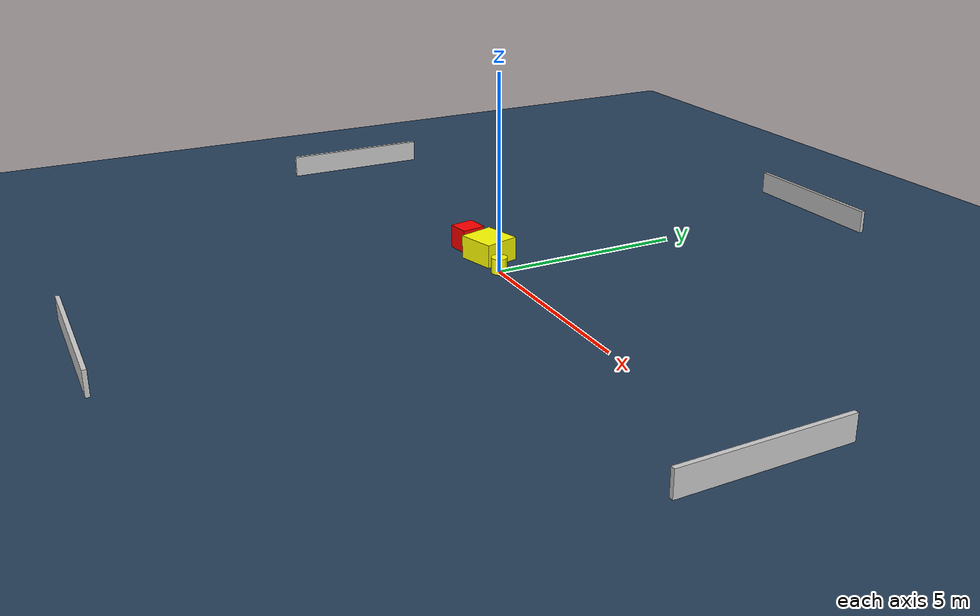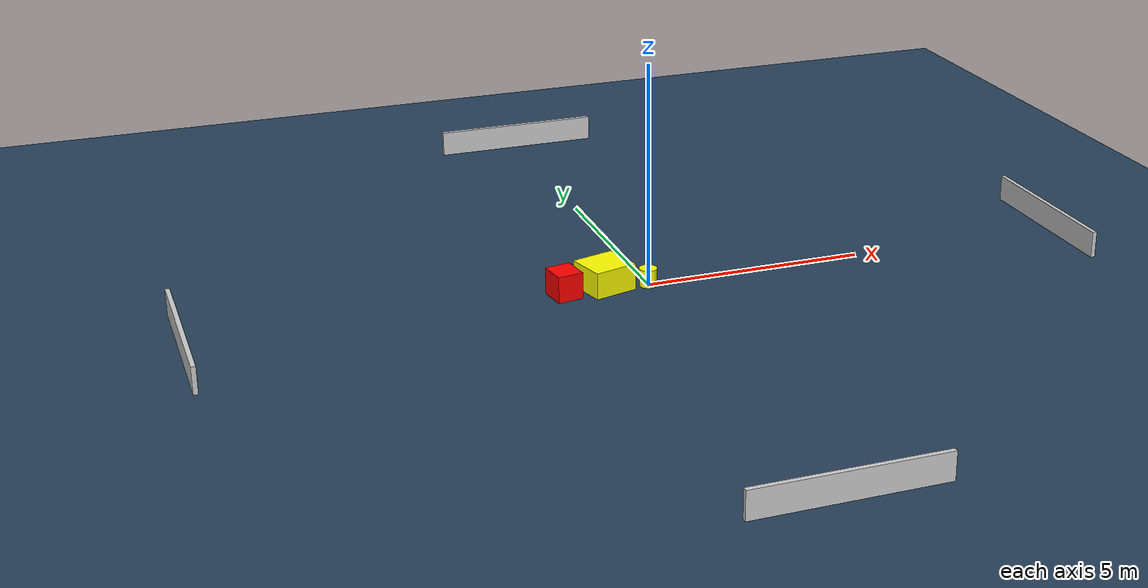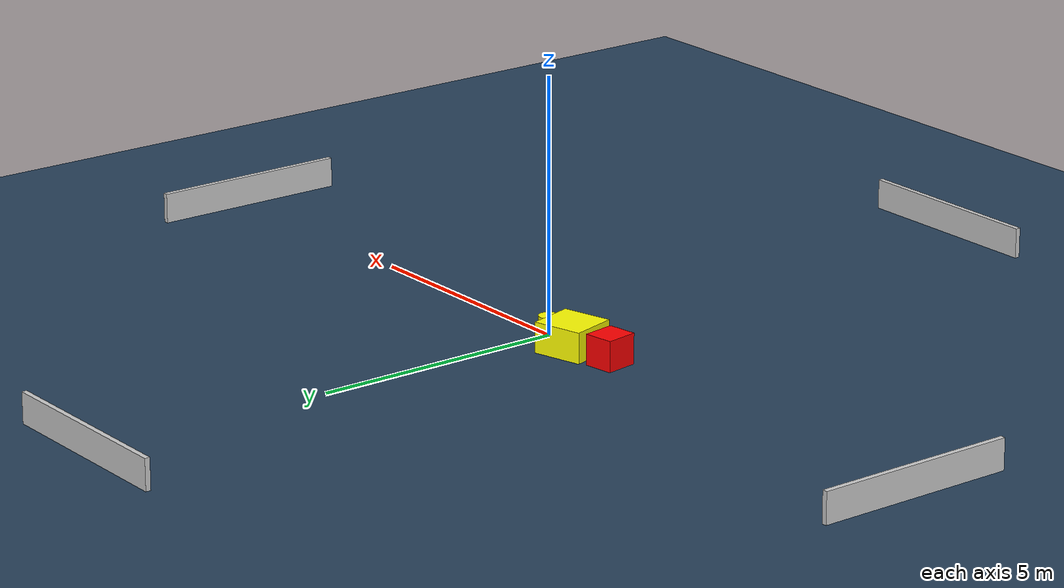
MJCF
<?xml version="1.0" ?>
<mujoco model="generated_environment">
  <option timestep="0.01" integrator="RK4" cone="elliptic"/>
  <default>
    <geom density="1"/>
  </default>
  <asset>
    <texture builtin="gradient" height="3072" name="skybox" rgb1="0.3 0.5 0.7" rgb2="0 0 0" type="skybox" width="512"/>
    <texture builtin="checker" height="300" name="groundplane" rgb1="0.2 0.3 0.4" rgb2="0.1 0.2 0.3" type="2d" width="300"/>
    <material name="groundplane" reflectance="0.2" texrepeat="5 5" texture="groundplane"/>
  </asset>
  <worldbody>
    <light dir="0 0 -1" directional="true" pos="0 0 1.5"/>
    <geom condim="3" friction="0.5 0.005 0.001" material="groundplane" name="floor" pos="0 0 0" size="0 0 0.05" type="plane"/>
    <body name="walls">
      <geom name="wall_1" condim="4" pos="-10.0 0.0 0.3" rgba="0.800000011920929 0.800000011920929 0.800000011920929 1.0" size="0.05 2.0 0.3" type="box"/>
      <geom name="wall_2" condim="4" pos="10.0 0.0 0.3" rgba="0.800000011920929 0.800000011920929 0.800000011920929 1.0" size="0.05 2.0 0.3" type="box"/>
      <geom name="wall_3" condim="4" pos="0.0 -10.0 0.3" rgba="0.800000011920929 0.800000011920929 0.800000011920929 1.0" size="2.0 0.05 0.3" type="box"/>
      <geom name="wall_4" condim="4" pos="0.0 10.0 0.3" rgba="0.800000011920929 0.800000011920929 0.800000011920929 1.0" size="2.0 0.05 0.3" type="box"/>
    </body>
    <body name="robot">
      <joint name="joint_x" type="slide" pos="0 0 0" axis="1 0 0"/>
      <joint name="joint_y" type="slide" pos="0 0 0" axis="0 1 0"/>
      <geom name="robot" type="cylinder" pos="0.0 0.0 0.2" size="0.2 0.2 0.0" mass="5.0" friction="1.0 0.005 0.0001" condim="4" rgba="1.0 1.0 0.0 1.0"/>
    </body>
    <body name="obstacle_1_movable">
      <geom name="obstacle_1_movable" condim="4" pos="-0.9406007406908916 0.19112000571670046 0.3" euler="0 0 285.1363873243809" friction="0.0 0.005 0.001" rgba="1.0 1.0 0.0 1.0" size="0.4624226407034039 0.49859646121384604 0.3" type="box" mass="0.1"/>
      <joint type="free"/>
    </body>
    <body name="obstacle_2_static">
      <geom name="obstacle_2_static" condim="4" pos="-1.9022610330901433 0.06388579162521112 0.3" euler="0 0 278.7721342535698" friction="0.0 0.005 0.001" rgba="1.0 0.0 0.0 1.0" size="0.3191300236891932 0.2907809248493496 0.3" type="box"/>
    </body>
  </worldbody>
  <actuator>
    <motor name="actuator_x" joint="joint_x" gear="1" ctrlrange="-1 1"/>
    <motor name="actuator_y" joint="joint_y" gear="1" ctrlrange="-1 1"/>
  </actuator>
</mujoco>
